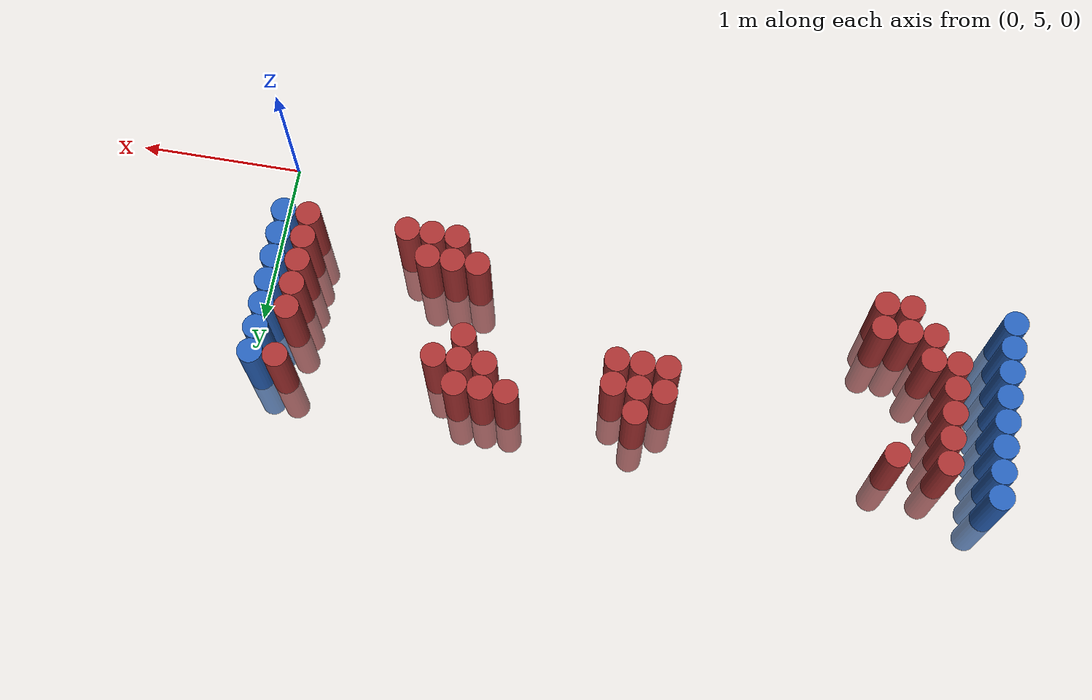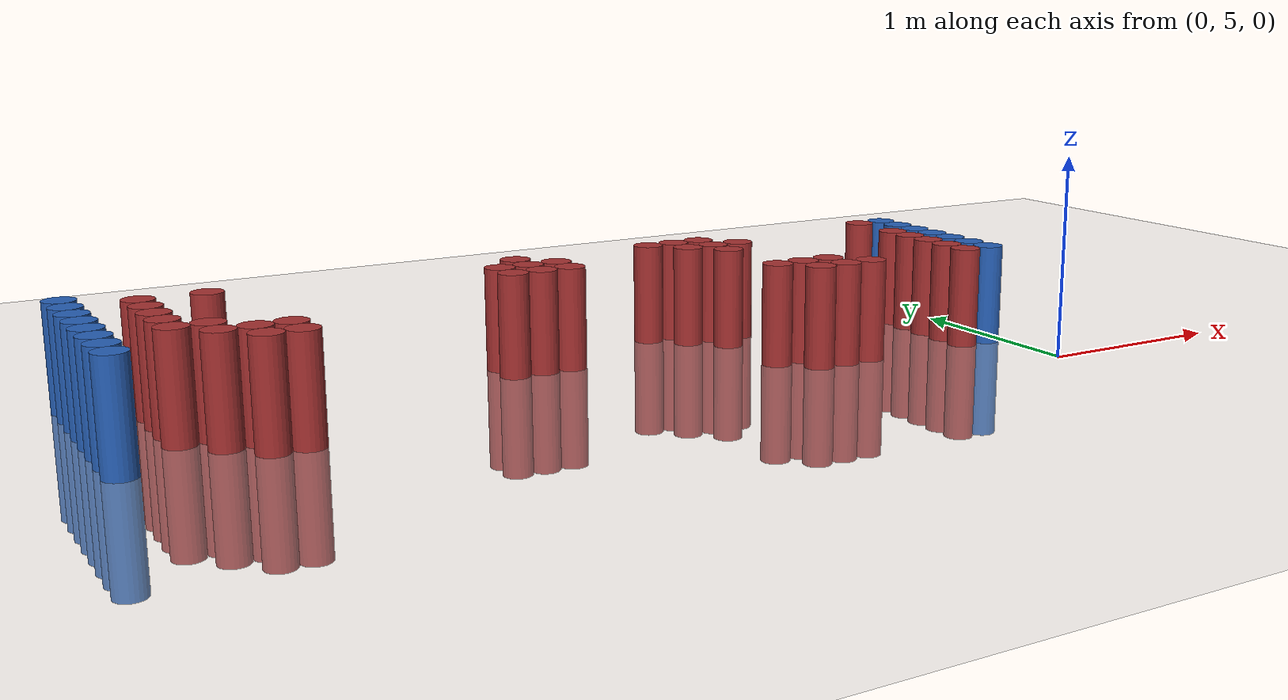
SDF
<sdf version="1.6">
 <world name="default">
  <model name="ground_plane">
   <static>1</static>
   <link name="link">
    <collision name="collision">
     <geometry><plane><normal>0 0 1</normal><size>100 100</size></plane></geometry>
     <surface><friction><ode><mu>100</mu><mu2>50</mu2></ode></friction></surface>
    </collision>
    <visual name="visual">
     <cast_shadows>0</cast_shadows>
     <geometry><plane><normal>0 0 1</normal><size>100 100</size></plane></geometry>
     <material>
      <script><uri>file://media/materials/scripts/gazebo.material</uri><name>Gazebo/Grey</name></script>
     </material>
    </visual>
   </link>
  </model>
  <model name="unit_cylinder_98">
   <static>1</static>
   <pose>-4.425000 5.475000 0.000000 0.000000 0.000000 0.000000</pose>
   <link name="link">
    <inertial>
     <mass>1</mass>
     <inertia><ixx>0.145833</ixx><ixy>0</ixy><ixz>0</ixz><iyy>0.145833</iyy><iyz>0</iyz><izz>0.125</izz></inertia>
    </inertial>
    <collision name="collision">
     <geometry><cylinder><radius>0.075000</radius><length>1</length></cylinder></geometry>
    </collision>
    <visual name="visual">
     <geometry><cylinder><radius>0.075000</radius><length>1</length></cylinder></geometry>
     <material>
      <ambient>0.152000 0.379000 0.720000 1</ambient>
      <diffuse>0.152000 0.379000 0.720000 1</diffuse>
     </material>
     <material>
      <script><name>Gazebo/Grey</name><uri>file://media/materials/scripts/gazebo.material</uri></script>
     </material>
    </visual>
   </link>
  </model>
  <model name="unit_cylinder_99">
   <static>1</static>
   <pose>-4.425000 5.625000 0.000000 0.000000 0.000000 0.000000</pose>
   <link name="link">
    <inertial>
     <mass>1</mass>
     <inertia><ixx>0.145833</ixx><ixy>0</ixy><ixz>0</ixz><iyy>0.145833</iyy><iyz>0</iyz><izz>0.125</izz></inertia>
    </inertial>
    <collision name="collision">
     <geometry><cylinder><radius>0.075000</radius><length>1</length></cylinder></geometry>
    </collision>
    <visual name="visual">
     <geometry><cylinder><radius>0.075000</radius><length>1</length></cylinder></geometry>
     <material>
      <ambient>0.152000 0.379000 0.720000 1</ambient>
      <diffuse>0.152000 0.379000 0.720000 1</diffuse>
     </material>
     <material>
      <script><name>Gazebo/Grey</name><uri>file://media/materials/scripts/gazebo.material</uri></script>
     </material>
    </visual>
   </link>
  </model>
  <model name="unit_cylinder_100">
   <static>1</static>
   <pose>-4.425000 5.775000 0.000000 0.000000 0.000000 0.000000</pose>
   <link name="link">
    <inertial>
     <mass>1</mass>
     <inertia><ixx>0.145833</ixx><ixy>0</ixy><ixz>0</ixz><iyy>0.145833</iyy><iyz>0</iyz><izz>0.125</izz></inertia>
    </inertial>
    <collision name="collision">
     <geometry><cylinder><radius>0.075000</radius><length>1</length></cylinder></geometry>
    </collision>
    <visual name="visual">
     <geometry><cylinder><radius>0.075000</radius><length>1</length></cylinder></geometry>
     <material>
      <ambient>0.152000 0.379000 0.720000 1</ambient>
      <diffuse>0.152000 0.379000 0.720000 1</diffuse>
     </material>
     <material>
      <script><name>Gazebo/Grey</name><uri>file://media/materials/scripts/gazebo.material</uri></script>
     </material>
    </visual>
   </link>
  </model>
  <model name="unit_cylinder_101">
   <static>1</static>
   <pose>-4.425000 5.925000 0.000000 0.000000 0.000000 0.000000</pose>
   <link name="link">
    <inertial>
     <mass>1</mass>
     <inertia><ixx>0.145833</ixx><ixy>0</ixy><ixz>0</ixz><iyy>0.145833</iyy><iyz>0</iyz><izz>0.125</izz></inertia>
    </inertial>
    <collision name="collision">
     <geometry><cylinder><radius>0.075000</radius><length>1</length></cylinder></geometry>
    </collision>
    <visual name="visual">
     <geometry><cylinder><radius>0.075000</radius><length>1</length></cylinder></geometry>
     <material>
      <ambient>0.152000 0.379000 0.720000 1</ambient>
      <diffuse>0.152000 0.379000 0.720000 1</diffuse>
     </material>
     <material>
      <script><name>Gazebo/Grey</name><uri>file://media/materials/scripts/gazebo.material</uri></script>
     </material>
    </visual>
   </link>
  </model>
  <model name="unit_cylinder_102">
   <static>1</static>
   <pose>-4.425000 6.075000 0.000000 0.000000 0.000000 0.000000</pose>
   <link name="link">
    <inertial>
     <mass>1</mass>
     <inertia><ixx>0.145833</ixx><ixy>0</ixy><ixz>0</ixz><iyy>0.145833</iyy><iyz>0</iyz><izz>0.125</izz></inertia>
    </inertial>
    <collision name="collision">
     <geometry><cylinder><radius>0.075000</radius><length>1</length></cylinder></geometry>
    </collision>
    <visual name="visual">
     <geometry><cylinder><radius>0.075000</radius><length>1</length></cylinder></geometry>
     <material>
      <ambient>0.152000 0.379000 0.720000 1</ambient>
      <diffuse>0.152000 0.379000 0.720000 1</diffuse>
     </material>
     <material>
      <script><name>Gazebo/Grey</name><uri>file://media/materials/scripts/gazebo.material</uri></script>
     </material>
    </visual>
   </link>
  </model>
  <model name="unit_cylinder_103">
   <static>1</static>
   <pose>-4.425000 6.225000 0.000000 0.000000 0.000000 0.000000</pose>
   <link name="link">
    <inertial>
     <mass>1</mass>
     <inertia><ixx>0.145833</ixx><ixy>0</ixy><ixz>0</ixz><iyy>0.145833</iyy><iyz>0</iyz><izz>0.125</izz></inertia>
    </inertial>
    <collision name="collision">
     <geometry><cylinder><radius>0.075000</radius><length>1</length></cylinder></geometry>
    </collision>
    <visual name="visual">
     <geometry><cylinder><radius>0.075000</radius><length>1</length></cylinder></geometry>
     <material>
      <ambient>0.152000 0.379000 0.720000 1</ambient>
      <diffuse>0.152000 0.379000 0.720000 1</diffuse>
     </material>
     <material>
      <script><name>Gazebo/Grey</name><uri>file://media/materials/scripts/gazebo.material</uri></script>
     </material>
    </visual>
   </link>
  </model>
  <model name="unit_cylinder_104">
   <static>1</static>
   <pose>-4.425000 6.375000 0.000000 0.000000 0.000000 0.000000</pose>
   <link name="link">
    <inertial>
     <mass>1</mass>
     <inertia><ixx>0.145833</ixx><ixy>0</ixy><ixz>0</ixz><iyy>0.145833</iyy><iyz>0</iyz><izz>0.125</izz></inertia>
    </inertial>
    <collision name="collision">
     <geometry><cylinder><radius>0.075000</radius><length>1</length></cylinder></geometry>
    </collision>
    <visual name="visual">
     <geometry><cylinder><radius>0.075000</radius><length>1</length></cylinder></geometry>
     <material>
      <ambient>0.152000 0.379000 0.720000 1</ambient>
      <diffuse>0.152000 0.379000 0.720000 1</diffuse>
     </material>
     <material>
      <script><name>Gazebo/Grey</name><uri>file://media/materials/scripts/gazebo.material</uri></script>
     </material>
    </visual>
   </link>
  </model>
  <model name="unit_cylinder_105">
   <static>1</static>
   <pose>-4.425000 6.525000 0.000000 0.000000 0.000000 0.000000</pose>
   <link name="link">
    <inertial>
     <mass>1</mass>
     <inertia><ixx>0.145833</ixx><ixy>0</ixy><ixz>0</ixz><iyy>0.145833</iyy><iyz>0</iyz><izz>0.125</izz></inertia>
    </inertial>
    <collision name="collision">
     <geometry><cylinder><radius>0.075000</radius><length>1</length></cylinder></geometry>
    </collision>
    <visual name="visual">
     <geometry><cylinder><radius>0.075000</radius><length>1</length></cylinder></geometry>
     <material>
      <ambient>0.152000 0.379000 0.720000 1</ambient>
      <diffuse>0.152000 0.379000 0.720000 1</diffuse>
     </material>
     <material>
      <script><name>Gazebo/Grey</name><uri>file://media/materials/scripts/gazebo.material</uri></script>
     </material>
    </visual>
   </link>
  </model>
  <model name="unit_cylinder_135">
   <static>1</static>
   <pose>-4.125000 5.775000 0.000000 0.000000 0.000000 0.000000</pose>
   <link name="link">
    <inertial>
     <mass>1</mass>
     <inertia><ixx>0.145833</ixx><ixy>0</ixy><ixz>0</ixz><iyy>0.145833</iyy><iyz>0</iyz><izz>0.125</izz></inertia>
    </inertial>
    <collision name="collision">
     <geometry><cylinder><radius>0.075000</radius><length>1</length></cylinder></geometry>
    </collision>
    <visual name="visual">
     <geometry><cylinder><radius>0.075000</radius><length>1</length></cylinder></geometry>
     <material>
      <ambient>0.648000 0.192000 0.192000 1</ambient>
      <diffuse>0.648000 0.192000 0.192000 1</diffuse>
     </material>
     <material>
      <script><name>Gazebo/Grey</name><uri>file://media/materials/scripts/gazebo.material</uri></script>
     </material>
    </visual>
   </link>
  </model>
  <model name="unit_cylinder_136">
   <static>1</static>
   <pose>-4.125000 5.925000 0.000000 0.000000 0.000000 0.000000</pose>
   <link name="link">
    <inertial>
     <mass>1</mass>
     <inertia><ixx>0.145833</ixx><ixy>0</ixy><ixz>0</ixz><iyy>0.145833</iyy><iyz>0</iyz><izz>0.125</izz></inertia>
    </inertial>
    <collision name="collision">
     <geometry><cylinder><radius>0.075000</radius><length>1</length></cylinder></geometry>
    </collision>
    <visual name="visual">
     <geometry><cylinder><radius>0.075000</radius><length>1</length></cylinder></geometry>
     <material>
      <ambient>0.648000 0.192000 0.192000 1</ambient>
      <diffuse>0.648000 0.192000 0.192000 1</diffuse>
     </material>
     <material>
      <script><name>Gazebo/Grey</name><uri>file://media/materials/scripts/gazebo.material</uri></script>
     </material>
    </visual>
   </link>
  </model>
  <model name="unit_cylinder_137">
   <static>1</static>
   <pose>-4.125000 6.075000 0.000000 0.000000 0.000000 0.000000</pose>
   <link name="link">
    <inertial>
     <mass>1</mass>
     <inertia><ixx>0.145833</ixx><ixy>0</ixy><ixz>0</ixz><iyy>0.145833</iyy><iyz>0</iyz><izz>0.125</izz></inertia>
    </inertial>
    <collision name="collision">
     <geometry><cylinder><radius>0.075000</radius><length>1</length></cylinder></geometry>
    </collision>
    <visual name="visual">
     <geometry><cylinder><radius>0.075000</radius><length>1</length></cylinder></geometry>
     <material>
      <ambient>0.648000 0.192000 0.192000 1</ambient>
      <diffuse>0.648000 0.192000 0.192000 1</diffuse>
     </material>
     <material>
      <script><name>Gazebo/Grey</name><uri>file://media/materials/scripts/gazebo.material</uri></script>
     </material>
    </visual>
   </link>
  </model>
  <model name="unit_cylinder_138">
   <static>1</static>
   <pose>-4.125000 6.225000 0.000000 0.000000 0.000000 0.000000</pose>
   <link name="link">
    <inertial>
     <mass>1</mass>
     <inertia><ixx>0.145833</ixx><ixy>0</ixy><ixz>0</ixz><iyy>0.145833</iyy><iyz>0</iyz><izz>0.125</izz></inertia>
    </inertial>
    <collision name="collision">
     <geometry><cylinder><radius>0.075000</radius><length>1</length></cylinder></geometry>
    </collision>
    <visual name="visual">
     <geometry><cylinder><radius>0.075000</radius><length>1</length></cylinder></geometry>
     <material>
      <ambient>0.648000 0.192000 0.192000 1</ambient>
      <diffuse>0.648000 0.192000 0.192000 1</diffuse>
     </material>
     <material>
      <script><name>Gazebo/Grey</name><uri>file://media/materials/scripts/gazebo.material</uri></script>
     </material>
    </visual>
   </link>
  </model>
  <model name="unit_cylinder_139">
   <static>1</static>
   <pose>-4.125000 6.375000 0.000000 0.000000 0.000000 0.000000</pose>
   <link name="link">
    <inertial>
     <mass>1</mass>
     <inertia><ixx>0.145833</ixx><ixy>0</ixy><ixz>0</ixz><iyy>0.145833</iyy><iyz>0</iyz><izz>0.125</izz></inertia>
    </inertial>
    <collision name="collision">
     <geometry><cylinder><radius>0.075000</radius><length>1</length></cylinder></geometry>
    </collision>
    <visual name="visual">
     <geometry><cylinder><radius>0.075000</radius><length>1</length></cylinder></geometry>
     <material>
      <ambient>0.648000 0.192000 0.192000 1</ambient>
      <diffuse>0.648000 0.192000 0.192000 1</diffuse>
     </material>
     <material>
      <script><name>Gazebo/Grey</name><uri>file://media/materials/scripts/gazebo.material</uri></script>
     </material>
    </visual>
   </link>
  </model>
  <model name="unit_cylinder_145">
   <static>1</static>
   <pose>-3.975000 5.625000 0.000000 0.000000 0.000000 0.000000</pose>
   <link name="link">
    <inertial>
     <mass>1</mass>
     <inertia><ixx>0.145833</ixx><ixy>0</ixy><ixz>0</ixz><iyy>0.145833</iyy><iyz>0</iyz><izz>0.125</izz></inertia>
    </inertial>
    <collision name="collision">
     <geometry><cylinder><radius>0.075000</radius><length>1</length></cylinder></geometry>
    </collision>
    <visual name="visual">
     <geometry><cylinder><radius>0.075000</radius><length>1</length></cylinder></geometry>
     <material>
      <ambient>0.648000 0.192000 0.192000 1</ambient>
      <diffuse>0.648000 0.192000 0.192000 1</diffuse>
     </material>
     <material>
      <script><name>Gazebo/Grey</name><uri>file://media/materials/scripts/gazebo.material</uri></script>
     </material>
    </visual>
   </link>
  </model>
  <model name="unit_cylinder_146">
   <static>1</static>
   <pose>-3.975000 5.775000 0.000000 0.000000 0.000000 0.000000</pose>
   <link name="link">
    <inertial>
     <mass>1</mass>
     <inertia><ixx>0.145833</ixx><ixy>0</ixy><ixz>0</ixz><iyy>0.145833</iyy><iyz>0</iyz><izz>0.125</izz></inertia>
    </inertial>
    <collision name="collision">
     <geometry><cylinder><radius>0.075000</radius><length>1</length></cylinder></geometry>
    </collision>
    <visual name="visual">
     <geometry><cylinder><radius>0.075000</radius><length>1</length></cylinder></geometry>
     <material>
      <ambient>0.648000 0.192000 0.192000 1</ambient>
      <diffuse>0.648000 0.192000 0.192000 1</diffuse>
     </material>
     <material>
      <script><name>Gazebo/Grey</name><uri>file://media/materials/scripts/gazebo.material</uri></script>
     </material>
    </visual>
   </link>
  </model>
  <model name="unit_cylinder_150">
   <static>1</static>
   <pose>-3.825000 5.475000 0.000000 0.000000 0.000000 0.000000</pose>
   <link name="link">
    <inertial>
     <mass>1</mass>
     <inertia><ixx>0.145833</ixx><ixy>0</ixy><ixz>0</ixz><iyy>0.145833</iyy><iyz>0</iyz><izz>0.125</izz></inertia>
    </inertial>
    <collision name="collision">
     <geometry><cylinder><radius>0.075000</radius><length>1</length></cylinder></geometry>
    </collision>
    <visual name="visual">
     <geometry><cylinder><radius>0.075000</radius><length>1</length></cylinder></geometry>
     <material>
      <ambient>0.648000 0.192000 0.192000 1</ambient>
      <diffuse>0.648000 0.192000 0.192000 1</diffuse>
     </material>
     <material>
      <script><name>Gazebo/Grey</name><uri>file://media/materials/scripts/gazebo.material</uri></script>
     </material>
    </visual>
   </link>
  </model>
  <model name="unit_cylinder_151">
   <static>1</static>
   <pose>-3.825000 5.625000 0.000000 0.000000 0.000000 0.000000</pose>
   <link name="link">
    <inertial>
     <mass>1</mass>
     <inertia><ixx>0.145833</ixx><ixy>0</ixy><ixz>0</ixz><iyy>0.145833</iyy><iyz>0</iyz><izz>0.125</izz></inertia>
    </inertial>
    <collision name="collision">
     <geometry><cylinder><radius>0.075000</radius><length>1</length></cylinder></geometry>
    </collision>
    <visual name="visual">
     <geometry><cylinder><radius>0.075000</radius><length>1</length></cylinder></geometry>
     <material>
      <ambient>0.648000 0.192000 0.192000 1</ambient>
      <diffuse>0.648000 0.192000 0.192000 1</diffuse>
     </material>
     <material>
      <script><name>Gazebo/Grey</name><uri>file://media/materials/scripts/gazebo.material</uri></script>
     </material>
    </visual>
   </link>
  </model>
  <model name="unit_cylinder_152">
   <static>1</static>
   <pose>-3.825000 6.375000 0.000000 0.000000 0.000000 0.000000</pose>
   <link name="link">
    <inertial>
     <mass>1</mass>
     <inertia><ixx>0.145833</ixx><ixy>0</ixy><ixz>0</ixz><iyy>0.145833</iyy><iyz>0</iyz><izz>0.125</izz></inertia>
    </inertial>
    <collision name="collision">
     <geometry><cylinder><radius>0.075000</radius><length>1</length></cylinder></geometry>
    </collision>
    <visual name="visual">
     <geometry><cylinder><radius>0.075000</radius><length>1</length></cylinder></geometry>
     <material>
      <ambient>0.648000 0.192000 0.192000 1</ambient>
      <diffuse>0.648000 0.192000 0.192000 1</diffuse>
     </material>
     <material>
      <script><name>Gazebo/Grey</name><uri>file://media/materials/scripts/gazebo.material</uri></script>
     </material>
    </visual>
   </link>
  </model>
  <model name="unit_cylinder_156">
   <static>1</static>
   <pose>-3.675000 5.475000 0.000000 0.000000 0.000000 0.000000</pose>
   <link name="link">
    <inertial>
     <mass>1</mass>
     <inertia><ixx>0.145833</ixx><ixy>0</ixy><ixz>0</ixz><iyy>0.145833</iyy><iyz>0</iyz><izz>0.125</izz></inertia>
    </inertial>
    <collision name="collision">
     <geometry><cylinder><radius>0.075000</radius><length>1</length></cylinder></geometry>
    </collision>
    <visual name="visual">
     <geometry><cylinder><radius>0.075000</radius><length>1</length></cylinder></geometry>
     <material>
      <ambient>0.648000 0.192000 0.192000 1</ambient>
      <diffuse>0.648000 0.192000 0.192000 1</diffuse>
     </material>
     <material>
      <script><name>Gazebo/Grey</name><uri>file://media/materials/scripts/gazebo.material</uri></script>
     </material>
    </visual>
   </link>
  </model>
  <model name="unit_cylinder_157">
   <static>1</static>
   <pose>-3.675000 5.625000 0.000000 0.000000 0.000000 0.000000</pose>
   <link name="link">
    <inertial>
     <mass>1</mass>
     <inertia><ixx>0.145833</ixx><ixy>0</ixy><ixz>0</ixz><iyy>0.145833</iyy><iyz>0</iyz><izz>0.125</izz></inertia>
    </inertial>
    <collision name="collision">
     <geometry><cylinder><radius>0.075000</radius><length>1</length></cylinder></geometry>
    </collision>
    <visual name="visual">
     <geometry><cylinder><radius>0.075000</radius><length>1</length></cylinder></geometry>
     <material>
      <ambient>0.648000 0.192000 0.192000 1</ambient>
      <diffuse>0.648000 0.192000 0.192000 1</diffuse>
     </material>
     <material>
      <script><name>Gazebo/Grey</name><uri>file://media/materials/scripts/gazebo.material</uri></script>
     </material>
    </visual>
   </link>
  </model>
  <model name="unit_cylinder_190">
   <static>1</static>
   <pose>-2.475000 6.075000 0.000000 0.000000 0.000000 0.000000</pose>
   <link name="link">
    <inertial>
     <mass>1</mass>
     <inertia><ixx>0.145833</ixx><ixy>0</ixy><ixz>0</ixz><iyy>0.145833</iyy><iyz>0</iyz><izz>0.125</izz></inertia>
    </inertial>
    <collision name="collision">
     <geometry><cylinder><radius>0.075000</radius><length>1</length></cylinder></geometry>
    </collision>
    <visual name="visual">
     <geometry><cylinder><radius>0.075000</radius><length>1</length></cylinder></geometry>
     <material>
      <ambient>0.648000 0.192000 0.192000 1</ambient>
      <diffuse>0.648000 0.192000 0.192000 1</diffuse>
     </material>
     <material>
      <script><name>Gazebo/Grey</name><uri>file://media/materials/scripts/gazebo.material</uri></script>
     </material>
    </visual>
   </link>
  </model>
  <model name="unit_cylinder_191">
   <static>1</static>
   <pose>-2.475000 6.225000 0.000000 0.000000 0.000000 0.000000</pose>
   <link name="link">
    <inertial>
     <mass>1</mass>
     <inertia><ixx>0.145833</ixx><ixy>0</ixy><ixz>0</ixz><iyy>0.145833</iyy><iyz>0</iyz><izz>0.125</izz></inertia>
    </inertial>
    <collision name="collision">
     <geometry><cylinder><radius>0.075000</radius><length>1</length></cylinder></geometry>
    </collision>
    <visual name="visual">
     <geometry><cylinder><radius>0.075000</radius><length>1</length></cylinder></geometry>
     <material>
      <ambient>0.648000 0.192000 0.192000 1</ambient>
      <diffuse>0.648000 0.192000 0.192000 1</diffuse>
     </material>
     <material>
      <script><name>Gazebo/Grey</name><uri>file://media/materials/scripts/gazebo.material</uri></script>
     </material>
    </visual>
   </link>
  </model>
  <model name="unit_cylinder_192">
   <static>1</static>
   <pose>-2.325000 6.075000 0.000000 0.000000 0.000000 0.000000</pose>
   <link name="link">
    <inertial>
     <mass>1</mass>
     <inertia><ixx>0.145833</ixx><ixy>0</ixy><ixz>0</ixz><iyy>0.145833</iyy><iyz>0</iyz><izz>0.125</izz></inertia>
    </inertial>
    <collision name="collision">
     <geometry><cylinder><radius>0.075000</radius><length>1</length></cylinder></geometry>
    </collision>
    <visual name="visual">
     <geometry><cylinder><radius>0.075000</radius><length>1</length></cylinder></geometry>
     <material>
      <ambient>0.648000 0.192000 0.192000 1</ambient>
      <diffuse>0.648000 0.192000 0.192000 1</diffuse>
     </material>
     <material>
      <script><name>Gazebo/Grey</name><uri>file://media/materials/scripts/gazebo.material</uri></script>
     </material>
    </visual>
   </link>
  </model>
  <model name="unit_cylinder_193">
   <static>1</static>
   <pose>-2.325000 6.225000 0.000000 0.000000 0.000000 0.000000</pose>
   <link name="link">
    <inertial>
     <mass>1</mass>
     <inertia><ixx>0.145833</ixx><ixy>0</ixy><ixz>0</ixz><iyy>0.145833</iyy><iyz>0</iyz><izz>0.125</izz></inertia>
    </inertial>
    <collision name="collision">
     <geometry><cylinder><radius>0.075000</radius><length>1</length></cylinder></geometry>
    </collision>
    <visual name="visual">
     <geometry><cylinder><radius>0.075000</radius><length>1</length></cylinder></geometry>
     <material>
      <ambient>0.648000 0.192000 0.192000 1</ambient>
      <diffuse>0.648000 0.192000 0.192000 1</diffuse>
     </material>
     <material>
      <script><name>Gazebo/Grey</name><uri>file://media/materials/scripts/gazebo.material</uri></script>
     </material>
    </visual>
   </link>
  </model>
  <model name="unit_cylinder_194">
   <static>1</static>
   <pose>-2.325000 6.375000 0.000000 0.000000 0.000000 0.000000</pose>
   <link name="link">
    <inertial>
     <mass>1</mass>
     <inertia><ixx>0.145833</ixx><ixy>0</ixy><ixz>0</ixz><iyy>0.145833</iyy><iyz>0</iyz><izz>0.125</izz></inertia>
    </inertial>
    <collision name="collision">
     <geometry><cylinder><radius>0.075000</radius><length>1</length></cylinder></geometry>
    </collision>
    <visual name="visual">
     <geometry><cylinder><radius>0.075000</radius><length>1</length></cylinder></geometry>
     <material>
      <ambient>0.648000 0.192000 0.192000 1</ambient>
      <diffuse>0.648000 0.192000 0.192000 1</diffuse>
     </material>
     <material>
      <script><name>Gazebo/Grey</name><uri>file://media/materials/scripts/gazebo.material</uri></script>
     </material>
    </visual>
   </link>
  </model>
  <model name="unit_cylinder_196">
   <static>1</static>
   <pose>-2.175000 6.075000 0.000000 0.000000 0.000000 0.000000</pose>
   <link name="link">
    <inertial>
     <mass>1</mass>
     <inertia><ixx>0.145833</ixx><ixy>0</ixy><ixz>0</ixz><iyy>0.145833</iyy><iyz>0</iyz><izz>0.125</izz></inertia>
    </inertial>
    <collision name="collision">
     <geometry><cylinder><radius>0.075000</radius><length>1</length></cylinder></geometry>
    </collision>
    <visual name="visual">
     <geometry><cylinder><radius>0.075000</radius><length>1</length></cylinder></geometry>
     <material>
      <ambient>0.648000 0.192000 0.192000 1</ambient>
      <diffuse>0.648000 0.192000 0.192000 1</diffuse>
     </material>
     <material>
      <script><name>Gazebo/Grey</name><uri>file://media/materials/scripts/gazebo.material</uri></script>
     </material>
    </visual>
   </link>
  </model>
  <model name="unit_cylinder_197">
   <static>1</static>
   <pose>-2.175000 6.225000 0.000000 0.000000 0.000000 0.000000</pose>
   <link name="link">
    <inertial>
     <mass>1</mass>
     <inertia><ixx>0.145833</ixx><ixy>0</ixy><ixz>0</ixz><iyy>0.145833</iyy><iyz>0</iyz><izz>0.125</izz></inertia>
    </inertial>
    <collision name="collision">
     <geometry><cylinder><radius>0.075000</radius><length>1</length></cylinder></geometry>
    </collision>
    <visual name="visual">
     <geometry><cylinder><radius>0.075000</radius><length>1</length></cylinder></geometry>
     <material>
      <ambient>0.648000 0.192000 0.192000 1</ambient>
      <diffuse>0.648000 0.192000 0.192000 1</diffuse>
     </material>
     <material>
      <script><name>Gazebo/Grey</name><uri>file://media/materials/scripts/gazebo.material</uri></script>
     </material>
    </visual>
   </link>
  </model>
  <model name="unit_cylinder_211">
   <static>1</static>
   <pose>-1.575000 6.375000 0.000000 0.000000 0.000000 0.000000</pose>
   <link name="link">
    <inertial>
     <mass>1</mass>
     <inertia><ixx>0.145833</ixx><ixy>0</ixy><ixz>0</ixz><iyy>0.145833</iyy><iyz>0</iyz><izz>0.125</izz></inertia>
    </inertial>
    <collision name="collision">
     <geometry><cylinder><radius>0.075000</radius><length>1</length></cylinder></geometry>
    </collision>
    <visual name="visual">
     <geometry><cylinder><radius>0.075000</radius><length>1</length></cylinder></geometry>
     <material>
      <ambient>0.648000 0.192000 0.192000 1</ambient>
      <diffuse>0.648000 0.192000 0.192000 1</diffuse>
     </material>
     <material>
      <script><name>Gazebo/Grey</name><uri>file://media/materials/scripts/gazebo.material</uri></script>
     </material>
    </visual>
   </link>
  </model>
  <model name="unit_cylinder_217">
   <static>1</static>
   <pose>-1.425000 6.225000 0.000000 0.000000 0.000000 0.000000</pose>
   <link name="link">
    <inertial>
     <mass>1</mass>
     <inertia><ixx>0.145833</ixx><ixy>0</ixy><ixz>0</ixz><iyy>0.145833</iyy><iyz>0</iyz><izz>0.125</izz></inertia>
    </inertial>
    <collision name="collision">
     <geometry><cylinder><radius>0.075000</radius><length>1</length></cylinder></geometry>
    </collision>
    <visual name="visual">
     <geometry><cylinder><radius>0.075000</radius><length>1</length></cylinder></geometry>
     <material>
      <ambient>0.648000 0.192000 0.192000 1</ambient>
      <diffuse>0.648000 0.192000 0.192000 1</diffuse>
     </material>
     <material>
      <script><name>Gazebo/Grey</name><uri>file://media/materials/scripts/gazebo.material</uri></script>
     </material>
    </visual>
   </link>
  </model>
  <model name="unit_cylinder_218">
   <static>1</static>
   <pose>-1.425000 6.375000 0.000000 0.000000 0.000000 0.000000</pose>
   <link name="link">
    <inertial>
     <mass>1</mass>
     <inertia><ixx>0.145833</ixx><ixy>0</ixy><ixz>0</ixz><iyy>0.145833</iyy><iyz>0</iyz><izz>0.125</izz></inertia>
    </inertial>
    <collision name="collision">
     <geometry><cylinder><radius>0.075000</radius><length>1</length></cylinder></geometry>
    </collision>
    <visual name="visual">
     <geometry><cylinder><radius>0.075000</radius><length>1</length></cylinder></geometry>
     <material>
      <ambient>0.648000 0.192000 0.192000 1</ambient>
      <diffuse>0.648000 0.192000 0.192000 1</diffuse>
     </material>
     <material>
      <script><name>Gazebo/Grey</name><uri>file://media/materials/scripts/gazebo.material</uri></script>
     </material>
    </visual>
   </link>
  </model>
  <model name="unit_cylinder_225">
   <static>1</static>
   <pose>-1.275000 5.625000 0.000000 0.000000 0.000000 0.000000</pose>
   <link name="link">
    <inertial>
     <mass>1</mass>
     <inertia><ixx>0.145833</ixx><ixy>0</ixy><ixz>0</ixz><iyy>0.145833</iyy><iyz>0</iyz><izz>0.125</izz></inertia>
    </inertial>
    <collision name="collision">
     <geometry><cylinder><radius>0.075000</radius><length>1</length></cylinder></geometry>
    </collision>
    <visual name="visual">
     <geometry><cylinder><radius>0.075000</radius><length>1</length></cylinder></geometry>
     <material>
      <ambient>0.648000 0.192000 0.192000 1</ambient>
      <diffuse>0.648000 0.192000 0.192000 1</diffuse>
     </material>
     <material>
      <script><name>Gazebo/Grey</name><uri>file://media/materials/scripts/gazebo.material</uri></script>
     </material>
    </visual>
   </link>
  </model>
  <model name="unit_cylinder_226">
   <static>1</static>
   <pose>-1.275000 6.075000 0.000000 0.000000 0.000000 0.000000</pose>
   <link name="link">
    <inertial>
     <mass>1</mass>
     <inertia><ixx>0.145833</ixx><ixy>0</ixy><ixz>0</ixz><iyy>0.145833</iyy><iyz>0</iyz><izz>0.125</izz></inertia>
    </inertial>
    <collision name="collision">
     <geometry><cylinder><radius>0.075000</radius><length>1</length></cylinder></geometry>
    </collision>
    <visual name="visual">
     <geometry><cylinder><radius>0.075000</radius><length>1</length></cylinder></geometry>
     <material>
      <ambient>0.648000 0.192000 0.192000 1</ambient>
      <diffuse>0.648000 0.192000 0.192000 1</diffuse>
     </material>
     <material>
      <script><name>Gazebo/Grey</name><uri>file://media/materials/scripts/gazebo.material</uri></script>
     </material>
    </visual>
   </link>
  </model>
  <model name="unit_cylinder_227">
   <static>1</static>
   <pose>-1.275000 6.225000 0.000000 0.000000 0.000000 0.000000</pose>
   <link name="link">
    <inertial>
     <mass>1</mass>
     <inertia><ixx>0.145833</ixx><ixy>0</ixy><ixz>0</ixz><iyy>0.145833</iyy><iyz>0</iyz><izz>0.125</izz></inertia>
    </inertial>
    <collision name="collision">
     <geometry><cylinder><radius>0.075000</radius><length>1</length></cylinder></geometry>
    </collision>
    <visual name="visual">
     <geometry><cylinder><radius>0.075000</radius><length>1</length></cylinder></geometry>
     <material>
      <ambient>0.648000 0.192000 0.192000 1</ambient>
      <diffuse>0.648000 0.192000 0.192000 1</diffuse>
     </material>
     <material>
      <script><name>Gazebo/Grey</name><uri>file://media/materials/scripts/gazebo.material</uri></script>
     </material>
    </visual>
   </link>
  </model>
  <model name="unit_cylinder_228">
   <static>1</static>
   <pose>-1.275000 6.375000 0.000000 0.000000 0.000000 0.000000</pose>
   <link name="link">
    <inertial>
     <mass>1</mass>
     <inertia><ixx>0.145833</ixx><ixy>0</ixy><ixz>0</ixz><iyy>0.145833</iyy><iyz>0</iyz><izz>0.125</izz></inertia>
    </inertial>
    <collision name="collision">
     <geometry><cylinder><radius>0.075000</radius><length>1</length></cylinder></geometry>
    </collision>
    <visual name="visual">
     <geometry><cylinder><radius>0.075000</radius><length>1</length></cylinder></geometry>
     <material>
      <ambient>0.648000 0.192000 0.192000 1</ambient>
      <diffuse>0.648000 0.192000 0.192000 1</diffuse>
     </material>
     <material>
      <script><name>Gazebo/Grey</name><uri>file://media/materials/scripts/gazebo.material</uri></script>
     </material>
    </visual>
   </link>
  </model>
  <model name="unit_cylinder_234">
   <static>1</static>
   <pose>-1.125000 5.475000 0.000000 0.000000 0.000000 0.000000</pose>
   <link name="link">
    <inertial>
     <mass>1</mass>
     <inertia><ixx>0.145833</ixx><ixy>0</ixy><ixz>0</ixz><iyy>0.145833</iyy><iyz>0</iyz><izz>0.125</izz></inertia>
    </inertial>
    <collision name="collision">
     <geometry><cylinder><radius>0.075000</radius><length>1</length></cylinder></geometry>
    </collision>
    <visual name="visual">
     <geometry><cylinder><radius>0.075000</radius><length>1</length></cylinder></geometry>
     <material>
      <ambient>0.648000 0.192000 0.192000 1</ambient>
      <diffuse>0.648000 0.192000 0.192000 1</diffuse>
     </material>
     <material>
      <script><name>Gazebo/Grey</name><uri>file://media/materials/scripts/gazebo.material</uri></script>
     </material>
    </visual>
   </link>
  </model>
  <model name="unit_cylinder_235">
   <static>1</static>
   <pose>-1.125000 5.625000 0.000000 0.000000 0.000000 0.000000</pose>
   <link name="link">
    <inertial>
     <mass>1</mass>
     <inertia><ixx>0.145833</ixx><ixy>0</ixy><ixz>0</ixz><iyy>0.145833</iyy><iyz>0</iyz><izz>0.125</izz></inertia>
    </inertial>
    <collision name="collision">
     <geometry><cylinder><radius>0.075000</radius><length>1</length></cylinder></geometry>
    </collision>
    <visual name="visual">
     <geometry><cylinder><radius>0.075000</radius><length>1</length></cylinder></geometry>
     <material>
      <ambient>0.648000 0.192000 0.192000 1</ambient>
      <diffuse>0.648000 0.192000 0.192000 1</diffuse>
     </material>
     <material>
      <script><name>Gazebo/Grey</name><uri>file://media/materials/scripts/gazebo.material</uri></script>
     </material>
    </visual>
   </link>
  </model>
  <model name="unit_cylinder_236">
   <static>1</static>
   <pose>-1.125000 6.225000 0.000000 0.000000 0.000000 0.000000</pose>
   <link name="link">
    <inertial>
     <mass>1</mass>
     <inertia><ixx>0.145833</ixx><ixy>0</ixy><ixz>0</ixz><iyy>0.145833</iyy><iyz>0</iyz><izz>0.125</izz></inertia>
    </inertial>
    <collision name="collision">
     <geometry><cylinder><radius>0.075000</radius><length>1</length></cylinder></geometry>
    </collision>
    <visual name="visual">
     <geometry><cylinder><radius>0.075000</radius><length>1</length></cylinder></geometry>
     <material>
      <ambient>0.648000 0.192000 0.192000 1</ambient>
      <diffuse>0.648000 0.192000 0.192000 1</diffuse>
     </material>
     <material>
      <script><name>Gazebo/Grey</name><uri>file://media/materials/scripts/gazebo.material</uri></script>
     </material>
    </visual>
   </link>
  </model>
  <model name="unit_cylinder_243">
   <static>1</static>
   <pose>-0.975000 5.475000 0.000000 0.000000 0.000000 0.000000</pose>
   <link name="link">
    <inertial>
     <mass>1</mass>
     <inertia><ixx>0.145833</ixx><ixy>0</ixy><ixz>0</ixz><iyy>0.145833</iyy><iyz>0</iyz><izz>0.125</izz></inertia>
    </inertial>
    <collision name="collision">
     <geometry><cylinder><radius>0.075000</radius><length>1</length></cylinder></geometry>
    </collision>
    <visual name="visual">
     <geometry><cylinder><radius>0.075000</radius><length>1</length></cylinder></geometry>
     <material>
      <ambient>0.648000 0.192000 0.192000 1</ambient>
      <diffuse>0.648000 0.192000 0.192000 1</diffuse>
     </material>
     <material>
      <script><name>Gazebo/Grey</name><uri>file://media/materials/scripts/gazebo.material</uri></script>
     </material>
    </visual>
   </link>
  </model>
  <model name="unit_cylinder_244">
   <static>1</static>
   <pose>-0.975000 5.625000 0.000000 0.000000 0.000000 0.000000</pose>
   <link name="link">
    <inertial>
     <mass>1</mass>
     <inertia><ixx>0.145833</ixx><ixy>0</ixy><ixz>0</ixz><iyy>0.145833</iyy><iyz>0</iyz><izz>0.125</izz></inertia>
    </inertial>
    <collision name="collision">
     <geometry><cylinder><radius>0.075000</radius><length>1</length></cylinder></geometry>
    </collision>
    <visual name="visual">
     <geometry><cylinder><radius>0.075000</radius><length>1</length></cylinder></geometry>
     <material>
      <ambient>0.648000 0.192000 0.192000 1</ambient>
      <diffuse>0.648000 0.192000 0.192000 1</diffuse>
     </material>
     <material>
      <script><name>Gazebo/Grey</name><uri>file://media/materials/scripts/gazebo.material</uri></script>
     </material>
    </visual>
   </link>
  </model>
  <model name="unit_cylinder_249">
   <static>1</static>
   <pose>-0.825000 5.475000 0.000000 0.000000 0.000000 0.000000</pose>
   <link name="link">
    <inertial>
     <mass>1</mass>
     <inertia><ixx>0.145833</ixx><ixy>0</ixy><ixz>0</ixz><iyy>0.145833</iyy><iyz>0</iyz><izz>0.125</izz></inertia>
    </inertial>
    <collision name="collision">
     <geometry><cylinder><radius>0.075000</radius><length>1</length></cylinder></geometry>
    </collision>
    <visual name="visual">
     <geometry><cylinder><radius>0.075000</radius><length>1</length></cylinder></geometry>
     <material>
      <ambient>0.648000 0.192000 0.192000 1</ambient>
      <diffuse>0.648000 0.192000 0.192000 1</diffuse>
     </material>
     <material>
      <script><name>Gazebo/Grey</name><uri>file://media/materials/scripts/gazebo.material</uri></script>
     </material>
    </visual>
   </link>
  </model>
  <model name="unit_cylinder_266">
   <static>1</static>
   <pose>-0.225000 5.475000 0.000000 0.000000 0.000000 0.000000</pose>
   <link name="link">
    <inertial>
     <mass>1</mass>
     <inertia><ixx>0.145833</ixx><ixy>0</ixy><ixz>0</ixz><iyy>0.145833</iyy><iyz>0</iyz><izz>0.125</izz></inertia>
    </inertial>
    <collision name="collision">
     <geometry><cylinder><radius>0.075000</radius><length>1</length></cylinder></geometry>
    </collision>
    <visual name="visual">
     <geometry><cylinder><radius>0.075000</radius><length>1</length></cylinder></geometry>
     <material>
      <ambient>0.648000 0.192000 0.192000 1</ambient>
      <diffuse>0.648000 0.192000 0.192000 1</diffuse>
     </material>
     <material>
      <script><name>Gazebo/Grey</name><uri>file://media/materials/scripts/gazebo.material</uri></script>
     </material>
    </visual>
   </link>
  </model>
  <model name="unit_cylinder_267">
   <static>1</static>
   <pose>-0.225000 5.625000 0.000000 0.000000 0.000000 0.000000</pose>
   <link name="link">
    <inertial>
     <mass>1</mass>
     <inertia><ixx>0.145833</ixx><ixy>0</ixy><ixz>0</ixz><iyy>0.145833</iyy><iyz>0</iyz><izz>0.125</izz></inertia>
    </inertial>
    <collision name="collision">
     <geometry><cylinder><radius>0.075000</radius><length>1</length></cylinder></geometry>
    </collision>
    <visual name="visual">
     <geometry><cylinder><radius>0.075000</radius><length>1</length></cylinder></geometry>
     <material>
      <ambient>0.648000 0.192000 0.192000 1</ambient>
      <diffuse>0.648000 0.192000 0.192000 1</diffuse>
     </material>
     <material>
      <script><name>Gazebo/Grey</name><uri>file://media/materials/scripts/gazebo.material</uri></script>
     </material>
    </visual>
   </link>
  </model>
  <model name="unit_cylinder_268">
   <static>1</static>
   <pose>-0.225000 5.775000 0.000000 0.000000 0.000000 0.000000</pose>
   <link name="link">
    <inertial>
     <mass>1</mass>
     <inertia><ixx>0.145833</ixx><ixy>0</ixy><ixz>0</ixz><iyy>0.145833</iyy><iyz>0</iyz><izz>0.125</izz></inertia>
    </inertial>
    <collision name="collision">
     <geometry><cylinder><radius>0.075000</radius><length>1</length></cylinder></geometry>
    </collision>
    <visual name="visual">
     <geometry><cylinder><radius>0.075000</radius><length>1</length></cylinder></geometry>
     <material>
      <ambient>0.648000 0.192000 0.192000 1</ambient>
      <diffuse>0.648000 0.192000 0.192000 1</diffuse>
     </material>
     <material>
      <script><name>Gazebo/Grey</name><uri>file://media/materials/scripts/gazebo.material</uri></script>
     </material>
    </visual>
   </link>
  </model>
  <model name="unit_cylinder_269">
   <static>1</static>
   <pose>-0.225000 5.925000 0.000000 0.000000 0.000000 0.000000</pose>
   <link name="link">
    <inertial>
     <mass>1</mass>
     <inertia><ixx>0.145833</ixx><ixy>0</ixy><ixz>0</ixz><iyy>0.145833</iyy><iyz>0</iyz><izz>0.125</izz></inertia>
    </inertial>
    <collision name="collision">
     <geometry><cylinder><radius>0.075000</radius><length>1</length></cylinder></geometry>
    </collision>
    <visual name="visual">
     <geometry><cylinder><radius>0.075000</radius><length>1</length></cylinder></geometry>
     <material>
      <ambient>0.648000 0.192000 0.192000 1</ambient>
      <diffuse>0.648000 0.192000 0.192000 1</diffuse>
     </material>
     <material>
      <script><name>Gazebo/Grey</name><uri>file://media/materials/scripts/gazebo.material</uri></script>
     </material>
    </visual>
   </link>
  </model>
  <model name="unit_cylinder_270">
   <static>1</static>
   <pose>-0.225000 6.075000 0.000000 0.000000 0.000000 0.000000</pose>
   <link name="link">
    <inertial>
     <mass>1</mass>
     <inertia><ixx>0.145833</ixx><ixy>0</ixy><ixz>0</ixz><iyy>0.145833</iyy><iyz>0</iyz><izz>0.125</izz></inertia>
    </inertial>
    <collision name="collision">
     <geometry><cylinder><radius>0.075000</radius><length>1</length></cylinder></geometry>
    </collision>
    <visual name="visual">
     <geometry><cylinder><radius>0.075000</radius><length>1</length></cylinder></geometry>
     <material>
      <ambient>0.648000 0.192000 0.192000 1</ambient>
      <diffuse>0.648000 0.192000 0.192000 1</diffuse>
     </material>
     <material>
      <script><name>Gazebo/Grey</name><uri>file://media/materials/scripts/gazebo.material</uri></script>
     </material>
    </visual>
   </link>
  </model>
  <model name="unit_cylinder_271">
   <static>1</static>
   <pose>-0.225000 6.375000 0.000000 0.000000 0.000000 0.000000</pose>
   <link name="link">
    <inertial>
     <mass>1</mass>
     <inertia><ixx>0.145833</ixx><ixy>0</ixy><ixz>0</ixz><iyy>0.145833</iyy><iyz>0</iyz><izz>0.125</izz></inertia>
    </inertial>
    <collision name="collision">
     <geometry><cylinder><radius>0.075000</radius><length>1</length></cylinder></geometry>
    </collision>
    <visual name="visual">
     <geometry><cylinder><radius>0.075000</radius><length>1</length></cylinder></geometry>
     <material>
      <ambient>0.648000 0.192000 0.192000 1</ambient>
      <diffuse>0.648000 0.192000 0.192000 1</diffuse>
     </material>
     <material>
      <script><name>Gazebo/Grey</name><uri>file://media/materials/scripts/gazebo.material</uri></script>
     </material>
    </visual>
   </link>
  </model>
  <model name="unit_cylinder_290">
   <static>1</static>
   <pose>-0.075000 5.475000 0.000000 0.000000 0.000000 0.000000</pose>
   <link name="link">
    <inertial>
     <mass>1</mass>
     <inertia><ixx>0.145833</ixx><ixy>0</ixy><ixz>0</ixz><iyy>0.145833</iyy><iyz>0</iyz><izz>0.125</izz></inertia>
    </inertial>
    <collision name="collision">
     <geometry><cylinder><radius>0.075000</radius><length>1</length></cylinder></geometry>
    </collision>
    <visual name="visual">
     <geometry><cylinder><radius>0.075000</radius><length>1</length></cylinder></geometry>
     <material>
      <ambient>0.152000 0.379000 0.720000 1</ambient>
      <diffuse>0.152000 0.379000 0.720000 1</diffuse>
     </material>
     <material>
      <script><name>Gazebo/Grey</name><uri>file://media/materials/scripts/gazebo.material</uri></script>
     </material>
    </visual>
   </link>
  </model>
  <model name="unit_cylinder_291">
   <static>1</static>
   <pose>-0.075000 5.625000 0.000000 0.000000 0.000000 0.000000</pose>
   <link name="link">
    <inertial>
     <mass>1</mass>
     <inertia><ixx>0.145833</ixx><ixy>0</ixy><ixz>0</ixz><iyy>0.145833</iyy><iyz>0</iyz><izz>0.125</izz></inertia>
    </inertial>
    <collision name="collision">
     <geometry><cylinder><radius>0.075000</radius><length>1</length></cylinder></geometry>
    </collision>
    <visual name="visual">
     <geometry><cylinder><radius>0.075000</radius><length>1</length></cylinder></geometry>
     <material>
      <ambient>0.152000 0.379000 0.720000 1</ambient>
      <diffuse>0.152000 0.379000 0.720000 1</diffuse>
     </material>
     <material>
      <script><name>Gazebo/Grey</name><uri>file://media/materials/scripts/gazebo.material</uri></script>
     </material>
    </visual>
   </link>
  </model>
  <model name="unit_cylinder_292">
   <static>1</static>
   <pose>-0.075000 5.775000 0.000000 0.000000 0.000000 0.000000</pose>
   <link name="link">
    <inertial>
     <mass>1</mass>
     <inertia><ixx>0.145833</ixx><ixy>0</ixy><ixz>0</ixz><iyy>0.145833</iyy><iyz>0</iyz><izz>0.125</izz></inertia>
    </inertial>
    <collision name="collision">
     <geometry><cylinder><radius>0.075000</radius><length>1</length></cylinder></geometry>
    </collision>
    <visual name="visual">
     <geometry><cylinder><radius>0.075000</radius><length>1</length></cylinder></geometry>
     <material>
      <ambient>0.152000 0.379000 0.720000 1</ambient>
      <diffuse>0.152000 0.379000 0.720000 1</diffuse>
     </material>
     <material>
      <script><name>Gazebo/Grey</name><uri>file://media/materials/scripts/gazebo.material</uri></script>
     </material>
    </visual>
   </link>
  </model>
  <model name="unit_cylinder_293">
   <static>1</static>
   <pose>-0.075000 5.925000 0.000000 0.000000 0.000000 0.000000</pose>
   <link name="link">
    <inertial>
     <mass>1</mass>
     <inertia><ixx>0.145833</ixx><ixy>0</ixy><ixz>0</ixz><iyy>0.145833</iyy><iyz>0</iyz><izz>0.125</izz></inertia>
    </inertial>
    <collision name="collision">
     <geometry><cylinder><radius>0.075000</radius><length>1</length></cylinder></geometry>
    </collision>
    <visual name="visual">
     <geometry><cylinder><radius>0.075000</radius><length>1</length></cylinder></geometry>
     <material>
      <ambient>0.152000 0.379000 0.720000 1</ambient>
      <diffuse>0.152000 0.379000 0.720000 1</diffuse>
     </material>
     <material>
      <script><name>Gazebo/Grey</name><uri>file://media/materials/scripts/gazebo.material</uri></script>
     </material>
    </visual>
   </link>
  </model>
  <model name="unit_cylinder_294">
   <static>1</static>
   <pose>-0.075000 6.075000 0.000000 0.000000 0.000000 0.000000</pose>
   <link name="link">
    <inertial>
     <mass>1</mass>
     <inertia><ixx>0.145833</ixx><ixy>0</ixy><ixz>0</ixz><iyy>0.145833</iyy><iyz>0</iyz><izz>0.125</izz></inertia>
    </inertial>
    <collision name="collision">
     <geometry><cylinder><radius>0.075000</radius><length>1</length></cylinder></geometry>
    </collision>
    <visual name="visual">
     <geometry><cylinder><radius>0.075000</radius><length>1</length></cylinder></geometry>
     <material>
      <ambient>0.152000 0.379000 0.720000 1</ambient>
      <diffuse>0.152000 0.379000 0.720000 1</diffuse>
     </material>
     <material>
      <script><name>Gazebo/Grey</name><uri>file://media/materials/scripts/gazebo.material</uri></script>
     </material>
    </visual>
   </link>
  </model>
  <model name="unit_cylinder_295">
   <static>1</static>
   <pose>-0.075000 6.225000 0.000000 0.000000 0.000000 0.000000</pose>
   <link name="link">
    <inertial>
     <mass>1</mass>
     <inertia><ixx>0.145833</ixx><ixy>0</ixy><ixz>0</ixz><iyy>0.145833</iyy><iyz>0</iyz><izz>0.125</izz></inertia>
    </inertial>
    <collision name="collision">
     <geometry><cylinder><radius>0.075000</radius><length>1</length></cylinder></geometry>
    </collision>
    <visual name="visual">
     <geometry><cylinder><radius>0.075000</radius><length>1</length></cylinder></geometry>
     <material>
      <ambient>0.152000 0.379000 0.720000 1</ambient>
      <diffuse>0.152000 0.379000 0.720000 1</diffuse>
     </material>
     <material>
      <script><name>Gazebo/Grey</name><uri>file://media/materials/scripts/gazebo.material</uri></script>
     </material>
    </visual>
   </link>
  </model>
  <model name="unit_cylinder_296">
   <static>1</static>
   <pose>-0.075000 6.375000 0.000000 0.000000 0.000000 0.000000</pose>
   <link name="link">
    <inertial>
     <mass>1</mass>
     <inertia><ixx>0.145833</ixx><ixy>0</ixy><ixz>0</ixz><iyy>0.145833</iyy><iyz>0</iyz><izz>0.125</izz></inertia>
    </inertial>
    <collision name="collision">
     <geometry><cylinder><radius>0.075000</radius><length>1</length></cylinder></geometry>
    </collision>
    <visual name="visual">
     <geometry><cylinder><radius>0.075000</radius><length>1</length></cylinder></geometry>
     <material>
      <ambient>0.152000 0.379000 0.720000 1</ambient>
      <diffuse>0.152000 0.379000 0.720000 1</diffuse>
     </material>
     <material>
      <script><name>Gazebo/Grey</name><uri>file://media/materials/scripts/gazebo.material</uri></script>
     </material>
    </visual>
   </link>
  </model>
 </world>
</sdf>
